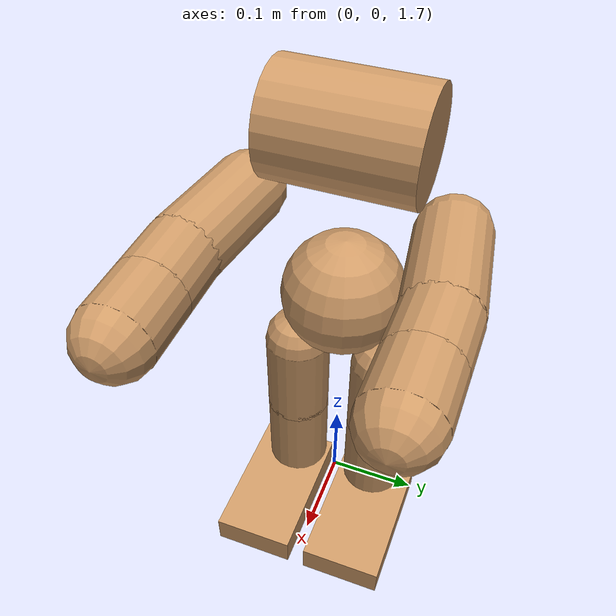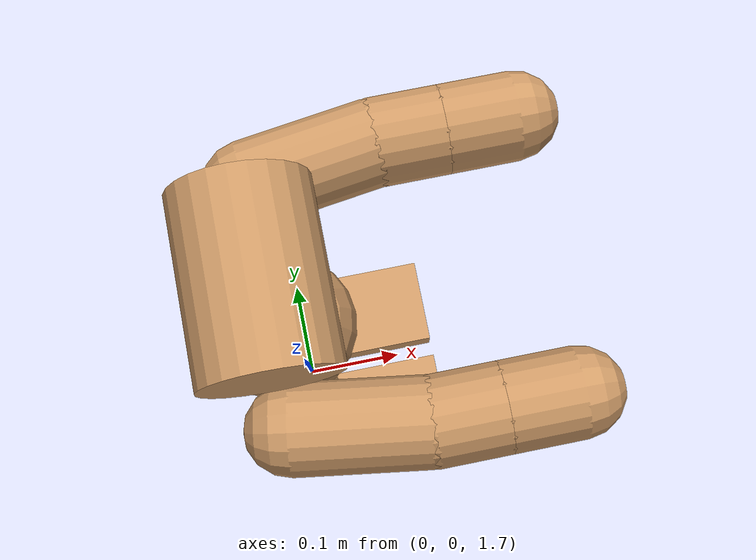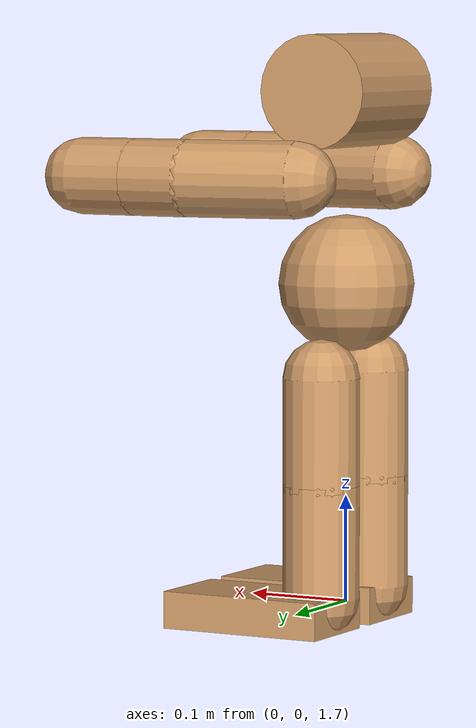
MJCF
<mujoco model="NaoV6">
  <option integrator="RK4" iterations="50" solver="PGS" timestep="0.003">
    <flags solverstat="enable" energy="enable"/>
  </option>

  <asset>
    <texture type="skybox" builtin="gradient" rgb1=".3 .5 .7" rgb2="0 0 0" width="32" height="512"/>
    <texture name="grid" type="2d" builtin="checker" width="512" height="512" rgb1=".1 .2 .3" rgb2=".2 .3 .4"/>
    <material name="grid" texture="grid" texrepeat="1 1" texuniform="true" reflectance=".2"/>
  </asset>

  <visual>
    <global offwidth="1280" offheight="720"/>
    <map fogend="5" fogstart="3"/>
  </visual>

  <default>
    <geom rgba="0.5 0.5 0.5 0.5"/>
    <joint armature="1" damping="1" limited="true"/>
    <geom conaffinity="1" condim="1" contype="1" margin="0.001" rgba="0.8 0.6 .4 1"/>
    <motor ctrllimited="false"/>
  </default>

  <worldbody>
    <geom name="floor" size="0 0 .05" type="plane" material="grid" condim="3"/>
    <light name="top" pos="0 0 2" mode="trackcom"/>

    <body name="torso" pos="0 0 2" euler="0 0 0">
      <freejoint name="root"/>
      <camera name="robot" mode="targetbody" target="torso" pos="0 1 0"/>
      <geom name="torso" type="sphere" size="0.0642"/>
      <site name="imu"/>
      <body name="head" pos="0 0 0.1265">
        <joint name="head_yaw" type="hinge" axis="0 0 1" range="-119.5 119.5"/>
        <joint name="head_pitch" type="hinge" axis="0 1 0" range="-38.5 29.5"/>
        <geom name="head" type="cylinder" size="0.053 0.0705" euler="90 0 0" pos="0 0 0.053"/>
      </body>

      <body name="left_shoulder" pos="0 0.098 0.1">
        <joint name="left_shoulder_pitch" type="hinge" axis="0 1 0" range="-119.5 119.5"/>
        <joint name="left_shoulder_roll" type="hinge" axis="1 0 0" range="-18 76"/>
        <geom name="left_upper_arm" type="capsule" size="0.036" fromto="0 0 0 0.105 0.015 0"/>
        <body name="left_elbow" pos="0.105 0.015 0">
          <joint name="left_elbow_yaw" type="hinge" axis="1 0 0" range="-119.5 119.5"/>
          <joint name="left_elbow_roll" type="hinge" axis="0 0 1" range="-88.5 -2"/>
          <geom name="left_lower_arm" type="capsule" size="0.036" fromto="0 0 0 0.05595 0 0"/>
          <body name="left_wrist" pos="0.05595 0 0">
            <joint name="left_wrist_yaw" type="hinge" axis="1 0 0" range="-104.5 104.5"/>
            <geom name="left_wrist" type="capsule" size="0.036" fromto="0 0 0 0.05775 0 0"/>
          </body>
        </body>
      </body>

      <body name="right_shoulder" pos="0 -0.098 0.1">
        <joint name="right_shoulder_pitch" type="hinge" axis="0 1 0" range="-119.5 119.5"/>
        <joint name="right_shoulder_roll" type="hinge" axis="1 0 0" range="-18 76"/>
        <geom name="right_upper_arm" type="capsule" size="0.036" fromto="0 0 0 0.105 -0.015 0"/>
        <body name="right_elbow" pos="0.105 -0.015 0">
          <joint name="right_elbow_yaw" type="hinge" axis="1 0 0" range="-119.5 119.5"/>
          <joint name="right_elbow_roll" type="hinge" axis="0 0 1" range="-88.5 -2"/>
          <geom name="right_lower_arm" type="capsule" size="0.036" fromto="0 0 0 0.05595 0 0"/>
          <body name="right_wrist" pos="0.05595 0 0">
            <joint name="right_wrist_yaw" type="hinge" axis="1 0 0" range="-104.5 104.5"/>
            <geom name="right_wrist" type="capsule" size="0.036" fromto="0 0 0 0.05775 0 0"/>
          </body>
        </body>
      </body>

      <body name="left_upper_leg" pos="0 0.05 -0.085" euler="0 90 0">
        <joint name="left_hip_yaw_pitch" type="hinge" axis="-1 -1 0" range="-65.62 42.44"/>
        <joint name="left_hip_roll" type="hinge" axis="0 0 1" range="-21.74 45.29"/>
        <joint name="left_hip_pitch" type="hinge" axis="0 1 0" range="-88 27.73"/>
        <geom name="left_upper_leg" type="capsule" size="0.036" fromto="0 0 0 0.105 0 0"/>
        <body name="left_lower_leg" pos="0.1 0 0">
          <joint name="left_knee_pitch" type="hinge" axis="0 1 0" range="-5.29 121.04"/>
          <geom name="left_lower_leg" type="capsule" size="0.036" fromto="0 0 0 0.105 0 0"/>
          <body name="left_foot" pos="0.1029 0 0" euler="0 -90 0">
            <site name="left_foot_back_left_fsr" pos="0 0.025 -0.035" size="0.015 0.015 0.0015"  type="box" rgba="1 0 0 1" />
            <geom name="left_foot_back_left_fsr" pos="0 0.025 -0.035" size="0.015 0.015 0.001" type="box" rgba="1 0 0 1" />
            <site name="left_foot_back_right_fsr" pos="0 -0.015 -0.035" size="0.015 0.015 0.0015" type="box" rgba="1 0 0 1" />
            <geom name="left_foot_back_right_fsr" pos="0 -0.015 -0.035" size="0.015 0.015 0.001" type="box"  rgba="1 0 0 1" />
            <site name="left_foot_front_left_fsr" pos="0.12 0.025 -0.035" size="0.015 0.015 0.0015" type="box" rgba="1 0 0 1" />
            <geom name="left_foot_front_left_fsr" pos="0.12 0.025 -0.035" size="0.015 0.015 0.001" type="box"  rgba="1 0 0 1" />
            <site name="left_foot_front_right_fsr" pos="0.12 -0.015 -0.035" size="0.015 0.015 0.0015" type="box" rgba="1 0 0 1" />
            <geom name="left_foot_front_right_fsr" pos="0.12 -0.015 -0.035" size="0.015 0.015 0.001" type="box"  rgba="1 0 0 1" />
            <joint name="left_ankle_pitch" type="hinge" axis="0 1 0" range="-68.15 52.86"/>
            <joint name="left_ankle_roll" type="hinge" axis="1 0 0" range="-22.79 44.06"/>
            <geom name="left_foot" type="box" size="0.08 0.045 0.0175" pos="0.06 0.005 -0.0175"/>
          </body>
        </body>
      </body>

      <body name="right_upper_leg" pos="0 -0.05 -0.085" euler="0 90 0">
        <joint name="right_hip_yaw_pitch" type="hinge" axis="-1 1 0" range="-42.44 65.62"/>
        <joint name="right_hip_roll" type="hinge" axis="0 0 1" range="-45.29 21.74 "/>
        <joint name="right_hip_pitch" type="hinge" axis="0 1 0" range="-88 27.73"/>
        <geom name="right_upper_leg" type="capsule" size="0.036" fromto="0 0 0 0.105 0 0"/>
        <body name="right_lower_leg" pos="0.1 0 0">
        <joint name="right_knee_pitch" type="hinge" axis="0 1 0" range="-5.9 121.04"/> <!-- The Fuck?! they are not the same as the left leg? -->
          <geom name="right_lower_leg" type="capsule" size="0.036" fromto="0 0 0 0.105 0 0"/>
          <body name="right_foot" pos="0.1029 0 0" euler="0 -90 0">
            <site name="right_foot_back_left_fsr" pos="0 0.015 -0.035" size="0.015 0.015 0.001" type="box" rgba="1 0 0 1" />
            <geom name="right_foot_back_left_fsr" pos="0 0.015 -0.035" size="0.015 0.015 0.0015" type="box" rgba="1 0 0 1" />
            <site name="right_foot_back_right_fsr" pos="0 -0.025 -0.035" size="0.015 0.015 0.001" type="box" rgba="1 0 0 1" />
            <geom name="right_foot_back_right_fsr" pos="0 -0.025 -0.035" size="0.015 0.015 0.0015" type="box" rgba="1 0 0 1" />
            <site name="right_foot_front_left_fsr" pos="0.12 0.015 -0.035" size="0.015 0.015 0.001" type="box" rgba="1 0 0 1" />
            <geom name="right_foot_front_left_fsr" pos="0.12 0.015 -0.035" size="0.015 0.015 0.0015" type="box" rgba="1 0 0 1" />
            <site name="right_foot_front_right_fsr" pos="0.12 -0.025 -0.035" size="0.015 0.015 0.001" type="box" rgba="1 0 0 1" />
            <geom name="right_foot_front_right_fsr" pos="0.12 -0.025 -0.035" size="0.015 0.015 0.0015" type="box" rgba="1 0 0 1" />
            <joint name="right_ankle_pitch" type="hinge" axis="0 1 0" range="-67.97 53.4"/>
            <joint name="right_ankle_roll" type="hinge" axis="1 0 0" range="-44.06 22.8"/>
            <geom name="right_foot" type="box" size="0.08 0.045 0.0175" pos="0.06 -0.005 -0.0175"/>
          </body>
        </body>
      </body>
    </body>
  </worldbody>

  <equality>
    <joint joint1="left_hip_yaw_pitch" joint2="right_hip_yaw_pitch" polycoef="0 -1 0 0 0"/>
  </equality>

  <contact>
    <exclude body1="left_wrist" body2="left_shoulder"/>
    <exclude body1="right_wrist" body2="right_shoulder"/>
  </contact>

  <sensor>
    <accelerometer name="accelerometer" site="imu"/>
    <gyro name="gyroscope" site="imu"/>

    <touch name="left_foot_back_left_fsr" site="left_foot_back_left_fsr"/>
    <touch name="left_foot_back_right_fsr" site="left_foot_back_right_fsr"/>
    <touch name="left_foot_front_left_fsr" site="left_foot_front_left_fsr"/>
    <touch name="left_foot_front_right_fsr" site="left_foot_front_right_fsr"/>
    <touch name="right_foot_back_left_fsr" site="right_foot_back_left_fsr"/>
    <touch name="right_foot_back_right_fsr" site="right_foot_back_right_fsr"/>
    <touch name="right_foot_front_left_fsr" site="right_foot_front_left_fsr"/>
    <touch name="right_foot_front_right_fsr" site="right_foot_front_right_fsr"/>

    <jointpos name="head_yaw" joint="head_yaw"/>
    <jointpos name="head_pitch" joint="head_pitch"/>
    <jointpos name="left_shoulder_pitch" joint="left_shoulder_pitch"/>
    <jointpos name="left_shoulder_roll" joint="left_shoulder_roll"/>
    <jointpos name="left_elbow_yaw" joint="left_elbow_yaw"/>
    <jointpos name="left_elbow_roll" joint="left_elbow_roll"/>
    <jointpos name="left_wrist_yaw" joint="left_wrist_yaw"/>

    <jointpos name="right_shoulder_pitch" joint="right_shoulder_pitch"/>
    <jointpos name="right_shoulder_roll" joint="right_shoulder_roll"/>
    <jointpos name="right_elbow_yaw" joint="right_elbow_yaw"/>
    <jointpos name="right_elbow_roll" joint="right_elbow_roll"/>
    <jointpos name="right_wrist_yaw" joint="right_wrist_yaw"/>

    <jointpos name="left_hip_yaw_pitch" joint="left_hip_yaw_pitch"/>
    <jointpos name="left_hip_roll" joint="left_hip_roll"/>
    <jointpos name="left_hip_pitch" joint="left_hip_pitch"/>
    <jointpos name="left_knee_pitch" joint="left_knee_pitch"/>
    <jointpos name="left_ankle_pitch" joint="left_ankle_pitch"/>
    <jointpos name="left_ankle_roll" joint="left_ankle_roll"/>

    <jointpos name="right_hip_yaw_pitch" joint="right_hip_yaw_pitch"/>
    <jointpos name="right_hip_roll" joint="right_hip_roll"/>
    <jointpos name="right_hip_pitch" joint="right_hip_pitch"/>
    <jointpos name="right_knee_pitch" joint="right_knee_pitch"/>
    <jointpos name="right_ankle_pitch" joint="right_ankle_pitch"/>
    <jointpos name="right_ankle_roll" joint="right_ankle_roll"/>
  </sensor>

  <actuator>
    <position name="head_yaw" joint="head_yaw" kv="0.2"/>
    <position name="head_pitch" joint="head_pitch" kv="0.2"/>

    <position name="left_shoulder_pitch" joint="left_shoulder_pitch" kv="0.2"/>
    <position name="left_shoulder_roll" joint="left_shoulder_roll" kv="0.2"/>
    <position name="left_elbow_yaw" joint="left_elbow_yaw" kv="0.2"/>
    <position name="left_elbow_roll" joint="left_elbow_roll" kv="0.2"/>
    <position name="left_wrist_yaw" joint="left_wrist_yaw" kv="0.2"/>

    <position name="right_shoulder_pitch" joint="right_shoulder_pitch" kv="0.2"/>
    <position name="right_shoulder_roll" joint="right_shoulder_roll" kv="0.2"/>
    <position name="right_elbow_yaw" joint="right_elbow_yaw" kv="0.2"/>
    <position name="right_elbow_roll" joint="right_elbow_roll" kv="0.2"/>
    <position name="right_wrist_yaw" joint="right_wrist_yaw" kv="0.2"/>

    <position name="left_hip_yaw_pitch" joint="left_hip_yaw_pitch" kv="0.2"/>
    <position name="left_hip_roll" joint="left_hip_roll" kv="0.2"/>
    <position name="left_hip_pitch" joint="left_hip_pitch" kv="0.2"/>
    <position name="left_knee_pitch" joint="left_knee_pitch" kv="0.2"/>
    <position name="left_ankle_pitch" joint="left_ankle_pitch" kv="0.2"/>
    <position name="left_ankle_roll" joint="left_ankle_roll" kv="0.2"/>

    <position name="right_hip_yaw_pitch" joint="right_hip_yaw_pitch" kv="0.2"/>
    <position name="right_hip_roll" joint="right_hip_roll" kv="0.2"/>
    <position name="right_hip_pitch" joint="right_hip_pitch" kv="0.2"/>
    <position name="right_knee_pitch" joint="right_knee_pitch" kv="0.2"/>
    <position name="right_ankle_pitch" joint="right_ankle_pitch" kv="0.2"/>
    <position name="right_ankle_roll" joint="right_ankle_roll" kv="0.2"/>
  </actuator>

  <keyframe>
    <!--
    The values below are split into rows for readability:
      torso position
      torso orientation
      head
      left arm
      right arm
      left leg
      right leg
    -->
    <key name="zero"
         qpos="0 0 2.0
               1 0 0 0
               0 0
               0 0 0 0 0
               0 0 0 0 0
               0 0 0 0 0 0
               0 0 0 0 0 0"/>
    <key name="ready"
         qpos="0 0 0.3
               1 0 0 0
               0 0
               1.57 0.1 0 0 0
               1.57 0.1 0 0 0
               0 0 -0.25 0.35 -0.1 0
               0 0 -0.25 0.35 -0.1 0"/>
    <key name="face-down"
    qpos="0 0 0.064
    0.64 0.03 0.77 -0.02
    0 -0.4
    1.33 0.15 0.19 -0.08 0.1
    1.31 0.15 0.19 -0.08 -0.05
    0 0 -0.07 0.29 -0.04 0.02
    0 0.04 -0.1 0.31 0.04 0"/>
  </keyframe>
</mujoco>
